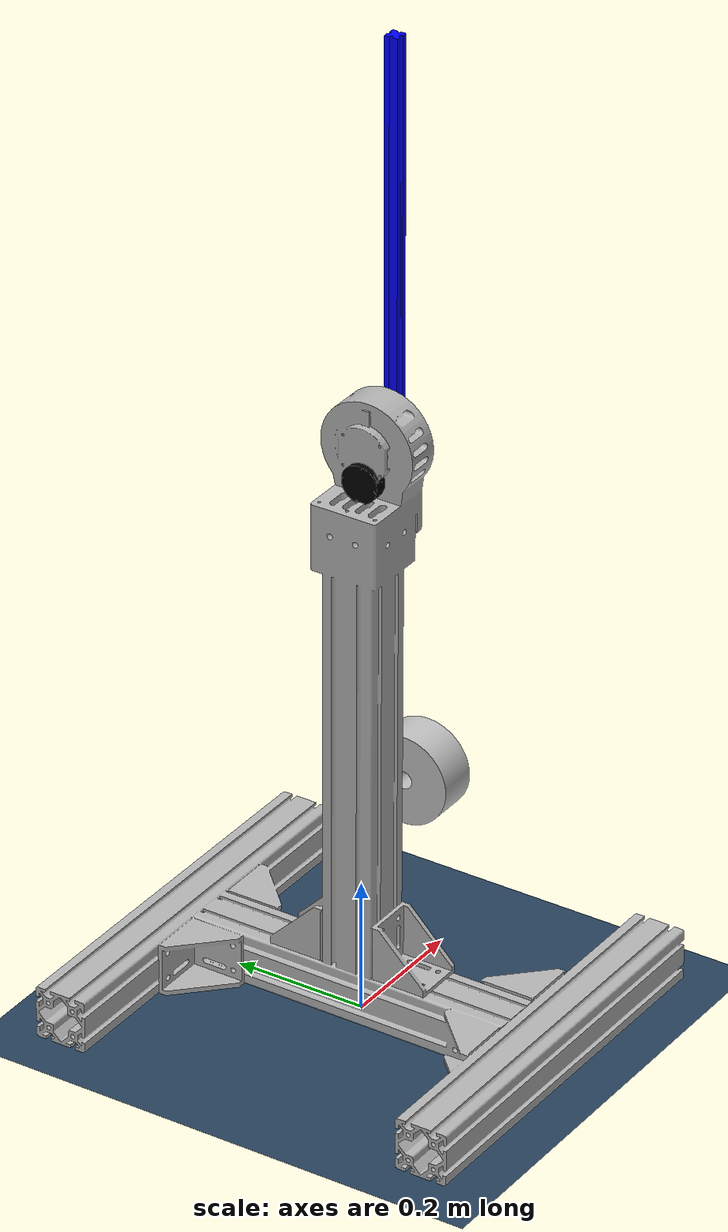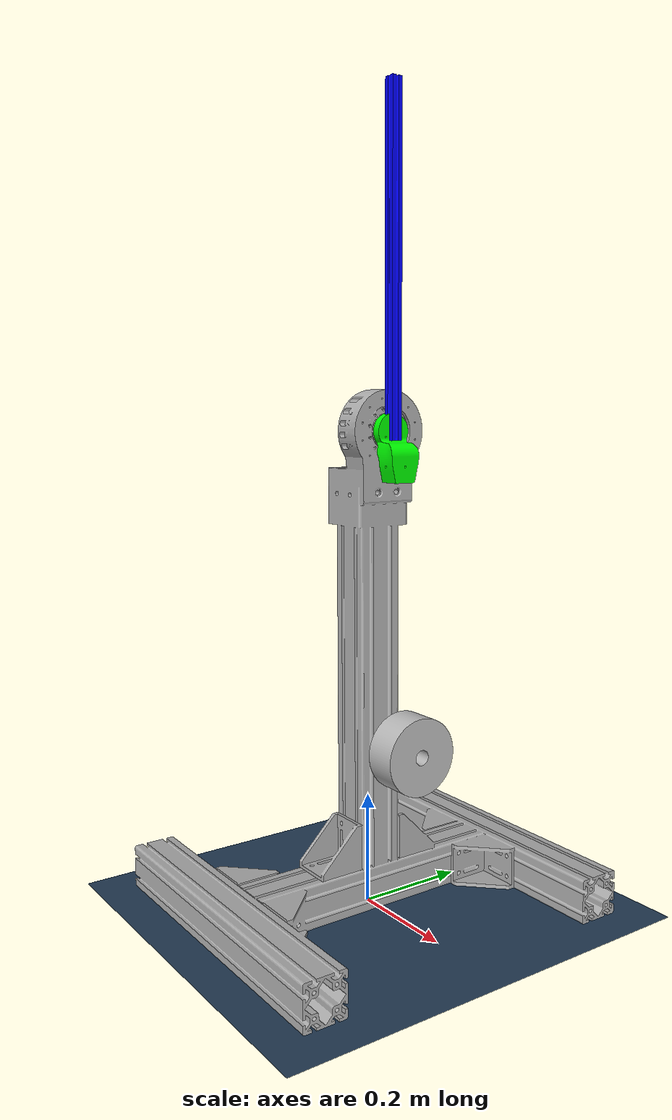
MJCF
<?xml version="1.0"?>
<mujoco model="Test scene">
  <compiler angle="radian"/>
  <!-- Global options -->
  <option timestep="0.002" gravity="0 0 -9.81"/>

  <!-- Default properties for joints and geoms -->
  <default>
    <joint armature="0.0" damping="0.0" frictionloss="0.0"/>
    <geom contype="1" conaffinity="1"/>
  </default>

  <!-- Assets: model meshes, scene textures, and materials -->
  <asset>
    <!-- Model meshes -->
    <mesh name="base_link"       file="meshes/base_link.stl"       scale="0.001 0.001 0.001"/>
    <mesh name="motor_1"         file="meshes/motor_1.stl"         scale="0.001 0.001 0.001"/>
    <mesh name="shaft_holder_1"  file="meshes/shaft_holder_1.stl"  scale="0.001 0.001 0.001"/>
    <mesh name="shaft_1"         file="meshes/shaft_1.stl"         scale="0.001 0.001 0.001"/>
    <mesh name="load_1"          file="meshes/load_1.stl"          scale="0.001 0.001 0.001"/>

    <!-- Materials -->
    <material name="base_link_mat"    rgba="0.7 0.7 0.7 1" specular="0.2" shininess="0.3"/>
    <material name="motor_mat"        rgba="0 0 0 1"       specular="0.5" shininess="0.8"/>
    <material name="shaft_holder_mat" rgba="0 1 0 1"       specular="0.3" shininess="0.5"/>
    <material name="shaft_mat"        rgba="0 0 1 1"       specular="0.3" shininess="0.5"/>
    <material name="load_mat"         rgba="0.75 0.75 0.75 1" specular="0.3" shininess="0.6"/>

    <!-- Scene textures -->
    <texture type="skybox" builtin="gradient" rgb1="0.3 0.5 0.7" rgb2="0 0 0" width="512" height="3072"/>
    <texture type="2d" name="groundplane" builtin="checker" mark="edge"
             rgb1="0.2 0.3 0.4" rgb2="0.1 0.2 0.3" markrgb="0.8 0.8 0.8"
             width="200" height="200"/>
    <material name="groundplane" texture="groundplane" texuniform="true" texrepeat="4 4" reflectance="0.2"/>
  </asset>

  <!-- Visual settings -->
  <statistic center="0 0 0.5" extent="0.6" meansize="0.04"/>
  <visual>
    <headlight diffuse="0.6 0.6 0.6" ambient="0.3 0.3 0.3" specular="0.1 0.1 0.1"/>
    <rgba haze="0.15 0.25 0.35 1"/>
    <global azimuth="180" elevation="-20"/>
    <quality shadowsize="4096"/>
  </visual>

  <!-- World body: model + scene -->
  <worldbody>
    <!-- Base link -->
    <body name="base_link" pos="0 0 0">
      <inertial pos="0.000420846 -0.00044119 0.19492273"
                quat="1 0 0 0"
                mass="20.4858"
                diaginertia="2.220232 1.624764 1.140571"/>
      <geom type="mesh" mesh="base_link" contype="0" conaffinity="0" material="base_link_mat" pos="0 0 0"/>

      <!-- Motor assembly -->
      <body name="motor_1" pos="-0.009823 -0.001851 0.825665">
        <inertial pos="0.02855723 -0.0000386482 0.0000153751"
                  quat="1 0 0 0"
                  mass="1.05802"
                  diaginertia="0.000397 0.000489 0.000486"/>
        <geom type="mesh" mesh="motor_1" contype="0" conaffinity="0" material="motor_mat" pos="0.009823 0.001851 -0.825665"/>

        <body name="shaft_holder_1" pos="0.0605 0 0">
          <joint name="revolute_2" type="hinge" axis="1 0 0" pos="0 0 0" frictionloss="0.1"/>
          <inertial pos="0.02046597 -0.0000064652 0.02194618"
                    quat="1 0 0 0"
                    mass="0.135892"
                    diaginertia="0.00013 0.00011 0.000057"/>
          <geom type="mesh" mesh="shaft_holder_1" contype="0" conaffinity="0" material="shaft_holder_mat" pos="-0.050677 0.001851 -0.825665"/>

          <body name="shaft_1" pos="0.025 0 0.024002">
            <inertial pos="0.0000003267 0.0000082623 0.3"
                      quat="1 0 0 0"
                      mass="0.5672592"
                      diaginertia="0.017037 0.017037 0.000039"/>
            <geom type="mesh" mesh="shaft_1" contype="0" conaffinity="0" material="shaft_mat" pos="-0.075677 0.001851 -0.849667"/>

            <!-- MuJoCo does not support explicit fixed joints. -->
            <body name="load_1" pos="2e-06 8e-05 0.6">
              <inertial pos="0.0008070412934903515 0.00017571907174825834 -0.03750011901940753"
                        quat="1 0 0 0"
                        mass="5.525231866204256"
                        diaginertia="0.007329 0.007138 0.009287"/>
              <geom type="mesh" mesh="load_1" contype="0" conaffinity="0" material="load_mat" pos="-0.075679 0.001771 -1.449667"/>
            </body>

          </body>
        </body>
      </body>
    </body>

    <light pos="0 0 2" dir="0 0 -1" directional="true"/>
    <geom name="floor" type="plane" pos="0 0 0" size="10 10 0.05" material="groundplane"/>
  </worldbody>

  <contact>
    <exclude body1="motor_1" body2="shaft_holder_1"/>
    <exclude body1="shaft_holder_1" body2="base_link"/>
    <exclude body1="load_1" body2="base_link"/>
  </contact>

  <actuator>
    <position name="revolute_2_act" joint="revolute_2" kp="90" kv="2" gear="1" ctrlrange="-6.2832 6.2832"/>
  </actuator>

  <sensor>
    <jointpos joint="revolute_2" name="revolute_2_pos"/>
    <jointvel joint="revolute_2" name="revolute_2_vel"/>
  </sensor>

  <keyframe>
    <key name="home" ctrl="0"/>
  </keyframe>
</mujoco>
